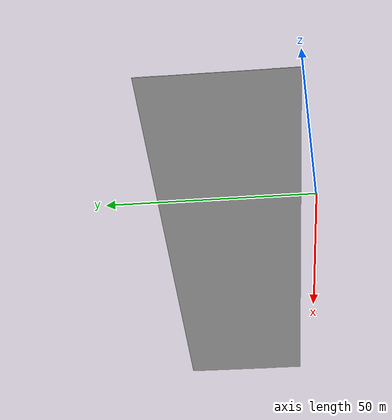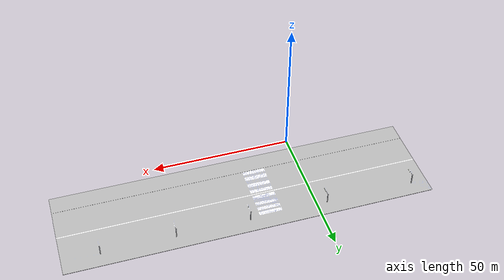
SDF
<?xml version="1.0" ?>
<sdf version='1.5'>
  <model name='road'>
    <static>true</static>
      <link name='link'>
        <pose frame='world'>0 0 0 0 0 0</pose>

        <visual name='visual'>
        <cast_shadows>false</cast_shadows>
          <geometry>
            <mesh>
              <scale>2 2 1</scale>
              <uri>model://road/meshes/road.dae</uri>
            </mesh>
          </geometry>
            <material>
	     <script>
		<uri>model://road/materials/textures</uri>

	     </script>
           </material>
        </visual>
      </link>
  </model>
</sdf>
